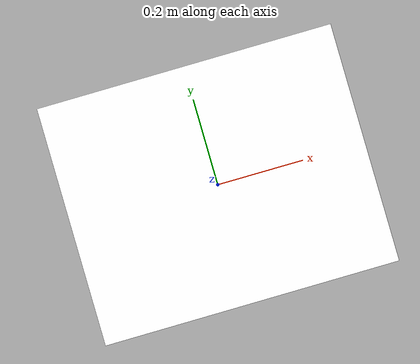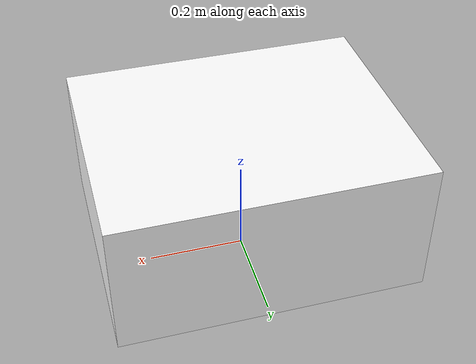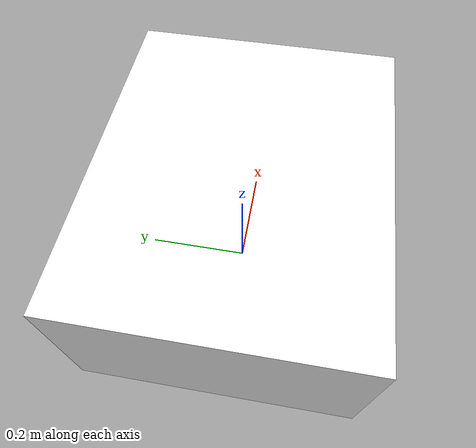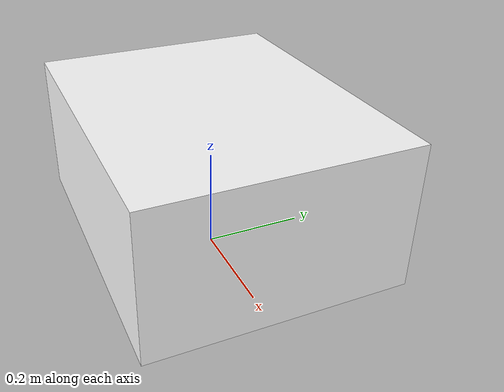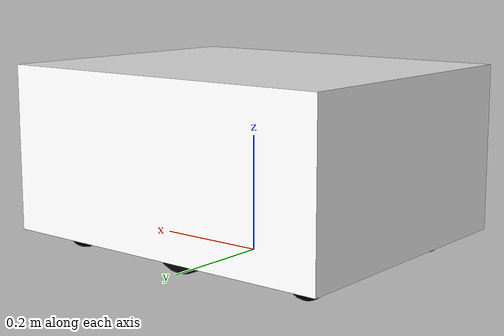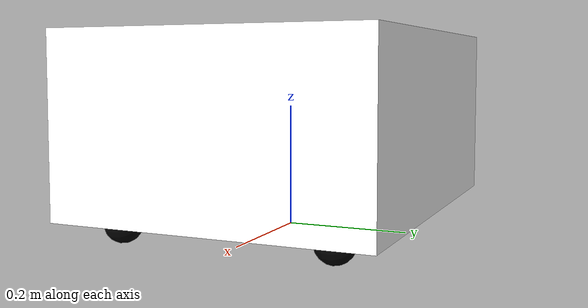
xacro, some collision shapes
<?xml version="1.0"?>
<!-- Copyright (c) Qualcomm Technologies, Inc. and/or its subsidiaries.
SPDX-License-Identifier: BSD-3-Clause-Clear -->
<robot xmlns:xacro="http://www.ros.org/wiki/xacro" name="$(arg robot_name)">
  <!-- Robot base -->
  <xacro:include filename="$(find qrb_ros_sim_description)/urdf/qrb_robot_base/qrb_robot_base.urdf" />
  <xacro:qrb_robot_base ns=""/>

  <!-- Gazebo Sensors -->
  <!-- Laser -->
  <xacro:arg name="enable_laser" default="false"/>
  <xacro:arg name="laser_config" default=""/>
  <xacro:if value="${'$(arg enable_laser)' if '$(arg laser_config)' != '' else 'false'}">
    <xacro:include filename="$(find qrb_ros_sim_gazebo)/urdf/xacro/gazebo_lidar.xacro" />
    <xacro:gazebo_lidar ns="" reference_link="laser"
      laser_params_yaml_path="$(arg laser_config)"/>
  </xacro:if>
  <!-- IMU -->
  <xacro:arg name="enable_imu" default="false"/>
  <xacro:arg name="imu_config" default=""/>
  <xacro:if value="${'$(arg enable_imu)' if '$(arg imu_config)' != '' else 'false'}">
    <xacro:include filename="$(find qrb_ros_sim_gazebo)/urdf/xacro/gazebo_imu.xacro" />
    <xacro:gazebo_imu ns="" reference_link="base_imu_link"
      imu_params_yaml_path="$(arg imu_config)"/>
  </xacro:if>

  <!-- Gazebo Plugins -->
  <!-- gz-sim-diff-drive-system controller -->
  <xacro:property name="separation_multiplier" value="1.1525"/>
  <xacro:property name="radius_multiplier" value="1.0"/>
  <xacro:property name="odom_update_rate" value="50"/>
  <xacro:include filename="$(find qrb_ros_sim_gazebo)/urdf/xacro/gazebo_qrb_robot_base_diff_drive.xacro" />
  <xacro:qrb_robot_base_diff_drive ns="" wheel_separation="${wheel_separation}" separation_multiplier="${separation_multiplier}"
      wheel_radius="${wheel_radius}" radius_multiplier="${radius_multiplier}" update_rate="${odom_update_rate}"/>
  <!-- gz-sim-joint-state-publisher-system controller -->
  <xacro:include filename="$(find qrb_ros_sim_gazebo)/urdf/xacro/gazebo_qrb_robot_base_joint_state_pub.xacro" />
  <xacro:qrb_robot_base_joint_state_pub ns=""/>
</robot>

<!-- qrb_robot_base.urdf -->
<!--
# Copyright (c) 2025 Qualcomm Innovation Center, Inc. All rights reserved.
# SPDX-License-Identifier: BSD-3-Clause-Clear
-->
<robot xmlns:xacro="http://ros.org/wiki/xacro">
  <xacro:macro name="qrb_robot_base" params="ns:=''">
    <xacro:property name="namespace" value="${ns + '/' if ns != '' else ''}" />
    <!-- Inertia matrices -->
    <xacro:include filename="$(find qrb_ros_sim_description)/urdf/qrb_robot_base/inertia_macros.xacro" />
    <!-- Material matrices -->
    <xacro:include filename="$(find qrb_ros_sim_description)/urdf/qrb_robot_base/material_macros.xacro" />

    <xacro:property name="box_length" value="0.62" />
    <xacro:property name="box_width" value="0.5" />
    <xacro:property name="box_height" value="0.285" scope="parent" />
    <xacro:property name="chassis_height" value="0.0364" />
    <xacro:property name="caster_wheel_radius" value="0.03"/>
    <xacro:property name="wheel_radius" value="0.0655" scope="parent" />
    <xacro:property name="wheel_space" value="0.3302" />
    <xacro:property name="wheel_thickness" value="0.05" />
    <xacro:property name="wheel_separation" value="0.33" scope="parent" />
    <xacro:property name="laser_radius" value="0.038" />
    <xacro:property name="laser_thickness" value="0.041" />
    <xacro:property name="laser_heigth" value="0.176" />

    <xacro:property name="base_link_mass" value="38"/>
    <xacro:property name="laser_link_mass" value="0.3"/>
    <xacro:property name="wheel_link_mass" value="1"/>
    <xacro:property name="caster_wheel_link_mass" value="0.3"/>

    <link name="${namespace}base_footprint"/>

    <link name="${namespace}base_link">
      <visual>
        <origin rpy="0 0 ${pi}" xyz="0 0 -${box_height/2}"/>
        <geometry>
          <mesh filename="file://$(find qrb_ros_sim_description)/meshes/qrb_robot_base/wheelTec_AMR.STL" scale="0.001 0.001 0.001"/>
        </geometry>
        <material name="white"/>
      </visual>
      <inertial name="base_link_inertial">
        <mass value="${base_link_mass}"/>
        <xacro:box_inertia_calculator mass="${base_link_mass}" length="${box_length}" width="${box_width}" height="${box_height}" />
      </inertial>
      <collision name="base_link_collision">
        <origin rpy="0 0 0" xyz="0 0 0"/>
        <geometry>
          <box size="${box_length} ${box_width} ${box_height}"/>
        </geometry>
      </collision>
    </link>

    <joint name="${namespace}base_link_joint" type="fixed">
      <parent link="${namespace}base_footprint"/>
      <child link="${namespace}base_link"/>
      <origin xyz="0 0 ${chassis_height+box_height/2}"/>
    </joint>

    <link name="${namespace}laser">
      <visual>
        <origin xyz="0 0 0" rpy="0 0 ${pi}"/>
        <geometry>
          <cylinder radius="${laser_radius}" length="${laser_thickness}" />
        </geometry>
        <material name="transparent"/>
      </visual>
      <inertial>
          <mass value="${laser_link_mass}"/>
          <xacro:cylinder_inertia_calculator mass="${laser_link_mass}" radius="${laser_radius}" length="${laser_thickness}"/>
      </inertial>
      <collision>
        <origin xyz="0 0 0" rpy="0 0 ${pi}"/>
        <geometry>
          <cylinder radius="${laser_radius}" length="${laser_thickness}" />
        </geometry>
      </collision>
    </link>
    <joint name="${namespace}laser_joint" type="fixed">
      <parent link="${namespace}base_link"/>
      <child link="${namespace}laser"/>
      <origin xyz="${box_length/2-laser_radius-0.01} 0 ${laser_heigth-chassis_height-(box_height/2)}" rpy="0 0 0" />
    </joint>

    <!-- Wheel_left Link -->
    <link name="${namespace}wheel_left">
      <inertial name="wheel_left_inertial">
        <mass value="${wheel_link_mass}"/>
        <xacro:cylinder_inertia_calculator mass="${wheel_link_mass}" radius="${wheel_radius}" length="${wheel_thickness}"/>
      </inertial>
      <collision name="wheel_left_collision">
        <origin xyz="0 0 0" rpy="${pi/2} 0 0"/>
        <geometry>
          <cylinder radius="${wheel_radius}" length="${wheel_thickness}"/>
        </geometry>
      </collision>
      <visual name="wheel_left_visual">
        <origin xyz="0 0 0" rpy="${pi/2} 0 0"/>
        <geometry>
          <cylinder radius="${wheel_radius}" length="${wheel_thickness}"/>
        </geometry>
        <material name="transparent"/>
      </visual>
    </link>

    <!-- Wheel_right Link -->
    <link name="${namespace}wheel_right">
      <inertial name="wheel_right_inertial">
        <mass value="${wheel_link_mass}"/>
        <xacro:cylinder_inertia_calculator mass="${wheel_link_mass}" radius="${wheel_radius}" length="${wheel_thickness}"/>
      </inertial>
      <collision name="wheel_right_collision">
        <origin xyz="0 0 0" rpy="${pi/2} 0 0"/>
        <geometry>
          <cylinder radius="${wheel_radius}" length="${wheel_thickness}"/>
        </geometry>
      </collision>
      <visual name="wheel_right_visual">
        <origin xyz="0 0 0" rpy="${pi/2} 0 0"/>
        <geometry>
          <cylinder radius="${wheel_radius}" length="${wheel_thickness}"/>
        </geometry>
        <material name="transparent"/>
      </visual>
    </link>

    <!-- Wheel_left Joint Link -->
    <joint name="${namespace}wheel_left_joint" type="continuous">
      <origin xyz="0 ${wheel_separation/2} -${chassis_height+box_height/2-wheel_radius}"/>
      <child link="${namespace}wheel_left"/>
      <parent link="${namespace}base_link"/>
      <axis xyz="0 1 0"/>
    </joint>

    <!-- Wheel_right Joint Link -->
    <joint name="${namespace}wheel_right_joint" type="continuous">
      <origin xyz="0 -${wheel_separation/2} -${chassis_height+box_height/2-wheel_radius}"/>
      <child link="${namespace}wheel_right"/>
      <parent link="${namespace}base_link"/>
      <axis xyz="0 1 0" />
    </joint>

    <link name="${namespace}caster_wheel_link1">
      <visual>
        <origin xyz="0 0 0" rpy="${pi/2} 0 0"/>
        <geometry>
          <sphere radius="${caster_wheel_radius}"/>
        </geometry>
        <material name="transparent"/>
      </visual>
      <collision>
        <origin xyz="0 0 0" rpy="${pi/2} 0 0"/>
        <geometry>
          <sphere radius="${caster_wheel_radius}"/>
        </geometry>
      </collision>
      <inertial>
        <mass value="${caster_wheel_link_mass}"/>
        <xacro:sphere_inertia_calculator mass="${caster_wheel_link_mass}" radius="${caster_wheel_radius}" />
      </inertial>
    </link>
    <joint name="${namespace}caster_wheel_joint1" type="continuous">
      <parent link="${namespace}base_link" />
      <child link="${namespace}caster_wheel_link1" />
      <origin xyz="0.24 0.17 -${chassis_height+box_height/2-caster_wheel_radius}" />
      <axis xyz="1 1 1" />
    </joint>

    <link name="${namespace}caster_wheel_link2">
      <visual>
        <origin xyz="0 0 0" rpy="${pi/2} 0 0"/>
        <geometry>
          <sphere radius="${caster_wheel_radius}"/>
        </geometry>
        <material name="transparent"/>
      </visual>
      <collision>
        <origin xyz="0 0 0" rpy="${pi/2} 0 0"/>
        <geometry>
          <sphere radius="${caster_wheel_radius}"/>
        </geometry>
      </collision>
      <inertial>
        <mass value="${caster_wheel_link_mass}"/>
        <xacro:sphere_inertia_calculator mass="${caster_wheel_link_mass}" radius="${caster_wheel_radius}" />
      </inertial>
    </link>
    <joint name="${namespace}caster_wheel_joint2" type="continuous">
      <parent link="${namespace}base_link" />
      <child link="${namespace}caster_wheel_link2" />
      <origin xyz="0.24 -0.17 -${chassis_height+box_height/2-caster_wheel_radius}" />
      <axis xyz="1 1 1" />
    </joint>

    <link name="${namespace}caster_wheel_link3">
      <visual>
        <origin xyz="0 0 0" rpy="${pi/2} 0 0"/>
        <geometry>
          <sphere radius="${caster_wheel_radius}"/>
        </geometry>
        <material name="transparent"/>
      </visual>
      <collision>
        <origin xyz="0 0 0" rpy="${pi/2} 0 0"/>
        <geometry>
          <sphere radius="${caster_wheel_radius}"/>
        </geometry>
      </collision>
      <inertial>
        <mass value="${caster_wheel_link_mass}"/>
        <xacro:sphere_inertia_calculator mass="${caster_wheel_link_mass}" radius="${caster_wheel_radius}" />
      </inertial>
    </link>
    <joint name="${namespace}caster_wheel_joint3" type="continuous">
      <parent link="${namespace}base_link" />
      <child link="${namespace}caster_wheel_link3" />
      <origin xyz="-0.24 0.17 -${chassis_height+box_height/2-caster_wheel_radius}" />
      <axis xyz="1 1 1" />
    </joint>

    <link name="${namespace}caster_wheel_link4">
      <visual>
        <origin xyz="0 0 0" rpy="${pi/2} 0 0"/>
        <geometry>
          <sphere radius="${caster_wheel_radius}"/>
        </geometry>
        <material name="transparent"/>
      </visual>
      <collision>
        <origin xyz="0 0 0" rpy="${pi/2} 0 0"/>
        <geometry>
          <sphere radius="${caster_wheel_radius}"/>
        </geometry>
      </collision>
      <inertial>
        <mass value="${caster_wheel_link_mass}"/>
        <xacro:sphere_inertia_calculator mass="${caster_wheel_link_mass}" radius="${caster_wheel_radius}" />
      </inertial>
    </link>
    <joint name="${namespace}caster_wheel_joint4" type="continuous">
      <parent link="${namespace}base_link" />
      <child link="${namespace}caster_wheel_link4" />
      <origin xyz="-0.24 -0.17 -${chassis_height+box_height/2-caster_wheel_radius}" />
      <axis xyz="1 1 1" />
    </joint>

    <link name="${namespace}base_imu_link">
      <inertial>
        <mass value="0.01"/>
        <inertia ixx="1.0" ixy="0" ixz="0" iyy="1.0" iyz="0" izz="1.0"/>
      </inertial>
    </link>
    <joint name="${namespace}base_to_imu_joint" type="fixed">
      <origin xyz="0.0 0.0 0.0"/>
      <parent link="${namespace}base_link"/>
      <child link="${namespace}base_imu_link"/>
    </joint>

    <!-- Gazebo elements -->
    <gazebo reference="${namespace}caster_wheel_link1">
      <mu1>0</mu1>
      <mu2>0</mu2>
    </gazebo>
    <gazebo reference="${namespace}caster_wheel_link2">
      <mu1>0</mu1>
      <mu2>0</mu2>
    </gazebo>
    <gazebo reference="${namespace}caster_wheel_link3">
      <mu1>0</mu1>
      <mu2>0</mu2>
    </gazebo>
    <gazebo reference="${namespace}caster_wheel_link4">
      <mu1>0</mu1>
      <mu2>0</mu2>
    </gazebo>
  </xacro:macro>
</robot>

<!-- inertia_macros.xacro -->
<robot xmlns:xacro="http://www.ros.org/wiki/xacro">
  <xacro:macro name="box_inertia_calculator" params="mass length width height">
    <inertia
      ixx="${mass / 12 * (width**2 + height**2)}"
      ixy="0"
      ixz="0"
      iyy="${mass / 12 * (length**2 + height**2)}"
      iyz="0"
      izz="${mass / 12 * (length**2 + width**2)}"/>
  </xacro:macro>

  <xacro:macro name="cylinder_inertia_calculator" params="mass radius length">
    <inertia
      ixx="${mass / 12 * (3 * radius**2 + length**2)}"
      ixy="0"
      ixz="0"
      iyy="${mass / 12 * (3 * radius**2 + length**2)}"
      iyz="0"
      izz="${mass / 2 * radius**2}"/>
  </xacro:macro>

  <xacro:macro name="sphere_inertia_calculator" params="mass radius">
    <inertia
      ixx="${2/5 * mass * radius**2}"
      ixy="0"
      ixz="0"
      iyy="${2/5 * mass * radius**2}"
      iyz="0"
      izz="${2/5 * mass * radius**2}"/>
  </xacro:macro>
</robot>

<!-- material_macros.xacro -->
<robot xmlns:xacro="http://www.ros.org/wiki/xacro">
  <material name="white">
    <color rgba="1 1 1 1"/>
  </material>
  <material name="black">
    <color rgba="0 0 0 1"/>
  </material>
  <material name="transparent">
    <color rgba="0 0 0 0"/>
  </material>
</robot>
